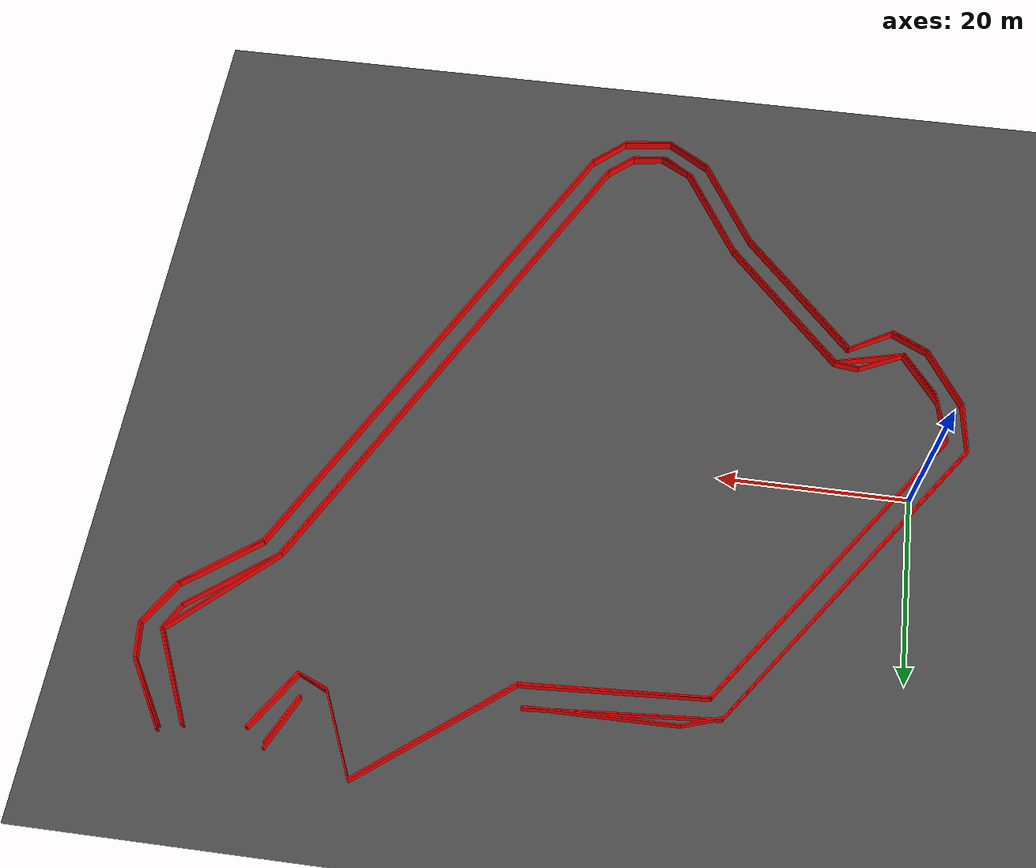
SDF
<sdf version="1.6">
 <world name="track_world">
  <model name="ground_plane">
   <static>true</static>
   <link name="link">
    <collision name="collision">
     <geometry><plane><normal>0 0 1</normal><size>1000 1000</size></plane></geometry>
    </collision>
    <visual name="visual">
     <geometry><plane><normal>0 0 1</normal><size>1000 1000</size></plane></geometry>
     <material><ambient>0.3 0.3 0.3 1</ambient><diffuse>0.3 0.3 0.3 1</diffuse></material>
    </visual>
   </link>
  </model>
  <model name="wall_11">
   <static>true</static>
   <pose>59.40029860208427 31.67979608975206 0.5 0 0 -2.0113266674114096</pose>
   <link name="link">
    <visual name="visual">
     <geometry><box><size>5.968211119054026 0.15 1.0</size></box></geometry>
     <material><ambient>1 0 0 1</ambient><diffuse>1 0 0 1</diffuse></material>
    </visual>
    <collision name="collision">
     <geometry><box><size>5.968211119054026 0.15 1.0</size></box></geometry>
    </collision>
   </link>
  </model>
  <model name="wall_15">
   <static>true</static>
   <pose>27.04845860208427 26.589876089752067 0.5 0 0 -3.070285188804503</pose>
   <link name="link">
    <visual name="visual">
     <geometry><box><size>19.483754067509675 0.15 1.0</size></box></geometry>
     <material><ambient>1 0 0 1</ambient><diffuse>1 0 0 1</diffuse></material>
    </visual>
    <collision name="collision">
     <geometry><box><size>19.483754067509675 0.15 1.0</size></box></geometry>
    </collision>
   </link>
  </model>
  <model name="wall_16">
   <static>true</static>
   <pose>5.724778602084275 9.893396089752066 0.5 0 0 -2.198301921255311</pose>
   <link name="link">
    <visual name="visual">
     <geometry><box><size>39.536769761506825 0.15 1.0</size></box></geometry>
     <material><ambient>1 0 0 1</ambient><diffuse>1 0 0 1</diffuse></material>
    </visual>
    <collision name="collision">
     <geometry><box><size>39.536769761506825 0.15 1.0</size></box></geometry>
    </collision>
   </link>
  </model>
  <model name="wall_17">
   <static>true</static>
   <pose>-5.611861397915725 -8.885323910247937 0.5 0 0 -1.473878699000534</pose>
   <link name="link">
    <visual name="visual">
     <geometry><box><size>5.578820502149181 0.15 1.0</size></box></geometry>
     <material><ambient>1 0 0 1</ambient><diffuse>1 0 0 1</diffuse></material>
    </visual>
    <collision name="collision">
     <geometry><box><size>5.578820502149181 0.15 1.0</size></box></geometry>
    </collision>
   </link>
  </model>
  <model name="wall_18">
   <static>true</static>
   <pose>-3.4139413979157247 -14.785003910247937 0.5 0 0 -1.0177648826442556</pose>
   <link name="link">
    <visual name="visual">
     <geometry><box><size>7.340997667783308 0.15 1.0</size></box></geometry>
     <material><ambient>1 0 0 1</ambient><diffuse>1 0 0 1</diffuse></material>
    </visual>
    <collision name="collision">
     <geometry><box><size>7.340997667783308 0.15 1.0</size></box></geometry>
    </collision>
   </link>
  </model>
  <model name="wall_19">
   <static>true</static>
   <pose>0.44205860208427694 -18.872363910247934 0.5 0 0 -0.46364760900080537</pose>
   <link name="link">
    <visual name="visual">
     <geometry><box><size>4.3111390606195945 0.15 1.0</size></box></geometry>
     <material><ambient>1 0 0 1</ambient><diffuse>1 0 0 1</diffuse></material>
    </visual>
    <collision name="collision">
     <geometry><box><size>4.3111390606195945 0.15 1.0</size></box></geometry>
    </collision>
   </link>
  </model>
  <model name="wall_20">
   <static>true</static>
   <pose>4.683658602084275 -18.486763910247934 0.5 0 0 0.5280744484263598</pose>
   <link name="link">
    <visual name="visual">
     <geometry><box><size>5.3569264023318395 0.15 1.0</size></box></geometry>
     <material><ambient>1 0 0 1</ambient><diffuse>1 0 0 1</diffuse></material>
    </visual>
    <collision name="collision">
     <geometry><box><size>5.3569264023318395 0.15 1.0</size></box></geometry>
    </collision>
   </link>
  </model>
  <model name="wall_21">
   <static>true</static>
   <pose>12.896938602084273 -23.538123910247933 0.5 0 0 -0.8261279770695137</pose>
   <link name="link">
    <visual name="visual">
     <geometry><box><size>17.410170938161407 0.15 1.0</size></box></geometry>
     <material><ambient>1 0 0 1</ambient><diffuse>1 0 0 1</diffuse></material>
    </visual>
    <collision name="collision">
     <geometry><box><size>17.410170938161407 0.15 1.0</size></box></geometry>
    </collision>
   </link>
  </model>
  <model name="wall_22">
   <static>true</static>
   <pose>21.650058602084272 -34.75908391024793 0.5 0 0 -1.0362799456764245</pose>
   <link name="link">
    <visual name="visual">
     <geometry><box><size>11.202592527375078 0.15 1.0</size></box></geometry>
     <material><ambient>1 0 0 1</ambient><diffuse>1 0 0 1</diffuse></material>
    </visual>
    <collision name="collision">
     <geometry><box><size>11.202592527375078 0.15 1.0</size></box></geometry>
    </collision>
   </link>
  </model>
  <model name="wall_23">
   <static>true</static>
   <pose>26.817098602084272 -41.005803910247934 0.5 0 0 -0.5525843502907148</pose>
   <link name="link">
    <visual name="visual">
     <geometry><box><size>5.436276269065071 0.15 1.0</size></box></geometry>
     <material><ambient>1 0 0 1</ambient><diffuse>1 0 0 1</diffuse></material>
    </visual>
    <collision name="collision">
     <geometry><box><size>5.436276269065071 0.15 1.0</size></box></geometry>
    </collision>
   </link>
  </model>
  <model name="wall_24">
   <static>true</static>
   <pose>31.675658602084276 -42.124043910247934 0.5 0 0 0.12062366858010372</pose>
   <link name="link">
    <visual name="visual">
     <geometry><box><size>5.127175172353689 0.15 1.0</size></box></geometry>
     <material><ambient>1 0 0 1</ambient><diffuse>1 0 0 1</diffuse></material>
    </visual>
    <collision name="collision">
     <geometry><box><size>5.127175172353689 0.15 1.0</size></box></geometry>
    </collision>
   </link>
  </model>
  <model name="wall_25">
   <static>true</static>
   <pose>36.03293860208428 -40.234603910247934 0.5 0 0 0.7173217051394482</pose>
   <link name="link">
    <visual name="visual">
     <geometry><box><size>4.809963951632066 0.15 1.0</size></box></geometry>
     <material><ambient>1 0 0 1</ambient><diffuse>1 0 0 1</diffuse></material>
    </visual>
    <collision name="collision">
     <geometry><box><size>4.809963951632066 0.15 1.0</size></box></geometry>
    </collision>
   </link>
  </model>
  <model name="wall_26">
   <static>true</static>
   <pose>51.611178602084266 -12.664203910247934 0.5 0 0 1.0836926099479667</pose>
   <link name="link">
    <visual name="visual">
     <geometry><box><size>58.8201171355515 0.15 1.0</size></box></geometry>
     <material><ambient>1 0 0 1</ambient><diffuse>1 0 0 1</diffuse></material>
    </visual>
    <collision name="collision"><geometry><box><size>58.8201171355515 0.15 1.0</size></box></geometry></collision>
   </link>
  </model>
  <model name="wall_27">
   <static>true</static>
   <pose>69.11741860208427 16.140116089752063 0.5 0 0 0.6451485537608409</pose>
   <link name="link">
    <visual name="visual">
     <geometry><box><size>9.362380705098476 0.15 1.0</size></box></geometry>
     <material><ambient>1 0 0 1</ambient><diffuse>1 0 0 1</diffuse></material>
    </visual>
    <collision name="collision">
     <geometry><box><size>9.362380705098476 0.15 1.0</size></box></geometry>
    </collision>
   </link>
  </model>
  <model name="wall_28">
   <static>true</static>
   <pose>74.24589860208428 21.26859608975206 0.5 0 0 1.030376826524313</pose>
   <link name="link">
    <visual name="visual">
     <geometry><box><size>5.3961961215656356 0.15 1.0</size></box></geometry>
     <material><ambient>1 0 0 1</ambient><diffuse>1 0 0 1</diffuse></material>
    </visual>
    <collision name="collision">
     <geometry><box><size>5.3961961215656356 0.15 1.0</size></box></geometry>
    </collision>
   </link>
  </model>
  <model name="wall_29">
   <static>true</static>
   <pose>75.40269860208427 25.39451608975206 0.5 0 0 1.6977691164089805</pose>
   <link name="link">
    <visual name="visual">
     <geometry><box><size>3.6540559557839303 0.15 1.0</size></box></geometry>
     <material><ambient>1 0 0 1</ambient><diffuse>1 0 0 1</diffuse></material>
    </visual>
    <collision name="collision">
     <geometry><box><size>3.6540559557839303 0.15 1.0</size></box></geometry>
    </collision>
   </link>
  </model>
  <model name="wall_30">
   <static>true</static>
   <pose>73.16621860208427 30.56155608975206 0.5 0 0 2.1095237813029404</pose>
   <link name="link">
    <visual name="visual">
     <geometry><box><size>7.816559983215114 0.15 1.0</size></box></geometry>
     <material><ambient>1 0 0 1</ambient><diffuse>1 0 0 1</diffuse></material>
    </visual>
    <collision name="collision">
     <geometry><box><size>7.816559983215114 0.15 1.0</size></box></geometry>
    </collision>
   </link>
  </model>
  <model name="wall_41">
   <static>true</static>
   <pose>73.05053860208427 30.36875608975206 0.5 0 0 -1.0143923976059468</pose>
   <link name="link">
    <visual name="visual">
     <geometry><box><size>7.447172972343268 0.15 1.0</size></box></geometry>
     <material><ambient>1 0 0 1</ambient><diffuse>1 0 0 1</diffuse></material>
    </visual>
    <collision name="collision">
     <geometry><box><size>7.447172972343268 0.15 1.0</size></box></geometry>
    </collision>
   </link>
  </model>
  <model name="wall_42">
   <static>true</static>
   <pose>75.24845860208427 25.355956089752063 0.5 0 0 -1.4464413322481375</pose>
   <link name="link">
    <visual name="visual">
     <geometry><box><size>3.7305679052926966 0.15 1.0</size></box></geometry>
     <material><ambient>1 0 0 1</ambient><diffuse>1 0 0 1</diffuse></material>
    </visual>
    <collision name="collision">
     <geometry><box><size>3.7305679052926966 0.15 1.0</size></box></geometry>
    </collision>
   </link>
  </model>
  <model name="wall_43">
   <static>true</static>
   <pose>74.09165860208427 21.268596089752066 0.5 0 0 -2.12629006206044</pose>
   <link name="link">
    <visual name="visual">
     <geometry><box><size>5.264534538209432 0.15 1.0</size></box></geometry>
     <material><ambient>1 0 0 1</ambient><diffuse>1 0 0 1</diffuse></material>
    </visual>
    <collision name="collision">
     <geometry><box><size>5.264534538209432 0.15 1.0</size></box></geometry>
    </collision>
   </link>
  </model>
  <model name="wall_44">
   <static>true</static>
   <pose>69.00173860208427 16.255796089752067 0.5 0 0 -2.4980915447965084</pose>
   <link name="link">
    <visual name="visual">
     <geometry><box><size>9.254399999999986 0.15 1.0</size></box></geometry>
     <material><ambient>1 0 0 1</ambient><diffuse>1 0 0 1</diffuse></material>
    </visual>
    <collision name="collision">
     <geometry><box><size>9.254399999999986 0.15 1.0</size></box></geometry>
    </collision>
   </link>
  </model>
  <model name="wall_45">
   <static>true</static>
   <pose>51.53405860208427 -12.509963910247933 0.5 0 0 -2.057900043641827</pose>
   <link name="link">
    <visual name="visual">
     <geometry><box><size>58.82011713555151 0.15 1.0</size></box></geometry>
     <material><ambient>1 0 0 1</ambient><diffuse>1 0 0 1</diffuse></material>
    </visual>
    <collision name="collision">
     <geometry><box><size>58.82011713555151 0.15 1.0</size></box></geometry>
    </collision>
   </link>
  </model>
  <model name="wall_46">
   <static>true</static>
   <pose>36.071498602084276 -40.041803910247936 0.5 0 0 -2.403777593469327</pose>
   <link name="link">
    <visual name="visual">
     <geometry><box><size>4.585884887172806 0.15 1.0</size></box></geometry>
     <material><ambient>1 0 0 1</ambient><diffuse>1 0 0 1</diffuse></material>
    </visual>
    <collision name="collision">
     <geometry><box><size>4.585884887172806 0.15 1.0</size></box></geometry>
    </collision>
   </link>
  </model>
  <model name="wall_47">
   <static>true</static>
   <pose>31.71421860208428 -41.931243910247936 0.5 0 0 -3.0118901164338814</pose>
   <link name="link">
    <visual name="visual">
     <geometry><box><size>5.366355176914776 0.15 1.0</size></box></geometry>
     <material><ambient>1 0 0 1</ambient><diffuse>1 0 0 1</diffuse></material>
    </visual>
    <collision name="collision">
     <geometry><box><size>5.366355176914776 0.15 1.0</size></box></geometry>
    </collision>
   </link>
  </model>
  <model name="wall_48">
   <static>true</static>
   <pose>26.81709860208428 -40.85156391024793 0.5 0 0 2.573748609326352</pose>
   <link name="link">
    <visual name="visual">
     <geometry><box><size>5.305609389617751 0.15 1.0</size></box></geometry>
     <material><ambient>1 0 0 1</ambient><diffuse>1 0 0 1</diffuse></material>
    </visual>
    <collision name="collision">
     <geometry><box><size>5.305609389617751 0.15 1.0</size></box></geometry>
    </collision>
   </link>
  </model>
  <model name="wall_49">
   <static>true</static>
   <pose>21.727178602084276 -34.604843910247936 0.5 0 0 2.1053127079133693</pose>
   <link name="link">
    <visual name="visual">
     <geometry><box><size>11.202592527375078 0.15 1.0</size></box></geometry>
     <material><ambient>1 0 0 1</ambient><diffuse>1 0 0 1</diffuse></material>
    </visual>
    <collision name="collision">
     <geometry><box><size>11.202592527375078 0.15 1.0</size></box></geometry>
    </collision>
   </link>
  </model>
  <model name="wall_50">
   <static>true</static>
   <pose>13.012618602084274 -23.422443910247935 0.5 0 0 2.3152079928786398</pose>
   <link name="link">
    <visual name="visual">
     <geometry><box><size>17.301197809909002 0.15 1.0</size></box></geometry>
     <material><ambient>1 0 0 1</ambient><diffuse>1 0 0 1</diffuse></material>
    </visual>
    <collision name="collision">
     <geometry><box><size>17.301197809909002 0.15 1.0</size></box></geometry>
    </collision>
   </link>
  </model>
  <model name="wall_51">
   <static>true</static>
   <pose>4.799338602084276 -18.371083910247936 0.5 0 0 -2.633103329510102</pose>
   <link name="link">
    <visual name="visual">
     <geometry><box><size>5.385715383196552 0.15 1.0</size></box></geometry>
     <material><ambient>1 0 0 1</ambient><diffuse>1 0 0 1</diffuse></material>
    </visual>
    <collision name="collision">
     <geometry><box><size>5.385715383196552 0.15 1.0</size></box></geometry>
    </collision>
   </link>
  </model>
  <model name="wall_52">
   <static>true</static>
   <pose>0.5191786020842777 -18.718123910247936 0.5 0 0 2.6779450445889865</pose>
   <link name="link">
    <visual name="visual">
     <geometry><box><size>4.311139060619598 0.15 1.0</size></box></geometry>
     <material><ambient>1 0 0 1</ambient><diffuse>1 0 0 1</diffuse></material>
    </visual>
    <collision name="collision">
     <geometry><box><size>4.311139060619598 0.15 1.0</size></box></geometry>
    </collision>
   </link>
  </model>
  <model name="wall_53">
   <static>true</static>
   <pose>-3.2982613979157236 -14.707883910247936 0.5 0 0 2.1259749029155017</pose>
   <link name="link">
    <visual name="visual">
     <geometry><box><size>7.169257046919154 0.15 1.0</size></box></geometry>
     <material><ambient>1 0 0 1</ambient><diffuse>1 0 0 1</diffuse></material>
    </visual>
    <collision name="collision">
     <geometry><box><size>7.169257046919154 0.15 1.0</size></box></geometry>
    </collision>
   </link>
  </model>
  <model name="wall_54">
   <static>true</static>
   <pose>-5.4961813979157235 -9.001003910247938 0.5 0 0 1.686222987161821</pose>
   <link name="link">
    <visual name="visual">
     <geometry><box><size>5.356926402331846 0.15 1.0</size></box></geometry>
     <material><ambient>1 0 0 1</ambient><diffuse>1 0 0 1</diffuse></material>
    </visual>
    <collision name="collision">
     <geometry><box><size>5.356926402331846 0.15 1.0</size></box></geometry>
    </collision>
   </link>
  </model>
  <model name="wall_55">
   <static>true</static>
   <pose>5.724778602084275 9.66203608975206 0.5 0 0 0.9464559545421241</pose>
   <link name="link">
    <visual name="visual">
     <geometry><box><size>39.44640883394076 0.15 1.0</size></box></geometry>
     <material><ambient>1 0 0 1</ambient><diffuse>1 0 0 1</diffuse></material>
    </visual>
    <collision name="collision">
     <geometry><box><size>39.44640883394076 0.15 1.0</size></box></geometry>
    </collision>
   </link>
  </model>
  <model name="wall_56">
   <static>true</static>
   <pose>19.25933860208427 26.31995608975206 0.5 0 0 0.315970271952982</pose>
   <link name="link">
    <visual name="visual">
     <geometry><box><size>4.21910544300566 0.15 1.0</size></box></geometry>
     <material><ambient>1 0 0 1</ambient><diffuse>1 0 0 1</diffuse></material>
    </visual>
    <collision name="collision"><geometry><box><size>4.21910544300566 0.15 1.0</size></box></geometry></collision>
   </link>
  </model>
  <model name="wall_57">
   <static>true</static>
   <pose>29.015018602084268 27.052596089752065 0.5 0 0 0.009949920392805265</pose>
   <link name="link">
    <visual name="visual">
     <geometry><box><size>15.501887344191351 0.15 1.0</size></box></geometry>
     <material><ambient>1 0 0 1</ambient><diffuse>1 0 0 1</diffuse></material>
    </visual>
    <collision name="collision">
     <geometry><box><size>15.501887344191351 0.15 1.0</size></box></geometry>
    </collision>
   </link>
  </model>
  <model name="wall_61">
   <static>true</static>
   <pose>59.438858602084274 31.332756089752067 0.5 0 0 1.1133214788988721</pose>
   <link name="link">
    <visual name="visual">
     <geometry><box><size>5.58734266942703 0.15 1.0</size></box></geometry>
     <material><ambient>1 0 0 1</ambient><diffuse>1 0 0 1</diffuse></material>
    </visual>
    <collision name="collision"><geometry><box><size>5.58734266942703 0.15 1.0</size></box></geometry></collision>
   </link>
  </model>
  <model name="wall_84">
   <static>true</static>
   <pose>60.67277860208427 29.636116089752058 0.5 0 0 -2.1467149264132495</pose>
   <link name="link">
    <visual name="visual">
     <geometry><box><size>7.080355238093628 0.15 1.0</size></box></geometry>
     <material><ambient>1 0 0 1</ambient><diffuse>1 0 0 1</diffuse></material>
    </visual>
    <collision name="collision">
     <geometry><box><size>7.080355238093628 0.15 1.0</size></box></geometry>
    </collision>
   </link>
  </model>
  <model name="wall_85">
   <static>true</static>
   <pose>57.31805860208427 27.322516089752064 0.5 0 0 2.7109001422032843</pose>
   <link name="link">
    <visual name="visual">
     <geometry><box><size>3.1402142785485276 0.15 1.0</size></box></geometry>
     <material><ambient>1 0 0 1</ambient><diffuse>1 0 0 1</diffuse></material>
    </visual>
    <collision name="collision">
     <geometry><box><size>3.1402142785485276 0.15 1.0</size></box></geometry>
    </collision>
   </link>
  </model>
  <model name="wall_87">
   <static>true</static>
   <pose>44.74749860208427 30.71579608975206 0.5 0 0 -2.480549484739107</pose>
   <link name="link">
    <visual name="visual">
     <geometry><box><size>18.465369044565556 0.15 1.0</size></box></geometry>
     <material><ambient>1 0 0 1</ambient><diffuse>1 0 0 1</diffuse></material>
    </visual>
    <collision name="collision">
     <geometry><box><size>18.465369044565556 0.15 1.0</size></box></geometry>
    </collision>
   </link>
  </model>
  <model name="wall_88">
   <static>true</static>
   <pose>28.051018602084273 24.50763608975206 0.5 0 0 -3.0842784444837528</pose>
   <link name="link">
    <visual name="visual">
     <geometry><box><size>18.848228975179595 0.15 1.0</size></box></geometry>
     <material><ambient>1 0 0 1</ambient><diffuse>1 0 0 1</diffuse></material>
    </visual>
    <collision name="collision">
     <geometry><box><size>18.848228975179595 0.15 1.0</size></box></geometry>
    </collision>
   </link>
  </model>
  <model name="wall_89">
   <static>true</static>
   <pose>7.459978602084277 8.46667608975206 0.5 0 0 -2.1957362099011433</pose>
   <link name="link">
    <visual name="visual">
     <geometry><box><size>38.22725682098572 0.15 1.0</size></box></geometry>
     <material><ambient>1 0 0 1</ambient><diffuse>1 0 0 1</diffuse></material>
    </visual>
    <collision name="collision">
     <geometry><box><size>38.22725682098572 0.15 1.0</size></box></geometry>
    </collision>
   </link>
  </model>
  <model name="wall_90">
   <static>true</static>
   <pose>-3.066901397915725 -9.810763910247935 0.5 0 0 -1.338931665945508</pose>
   <link name="link">
    <visual name="visual">
     <geometry><box><size>5.705316542594281 0.15 1.0</size></box></geometry>
     <material><ambient>1 0 0 1</ambient><diffuse>1 0 0 1</diffuse></material>
    </visual>
    <collision name="collision">
     <geometry><box><size>5.705316542594281 0.15 1.0</size></box></geometry>
    </collision>
   </link>
  </model>
  <model name="wall_91">
   <static>true</static>
   <pose>-0.6761813979157232 -14.862123910247934 0.5 0 0 -0.9192091408720385</pose>
   <link name="link">
    <visual name="visual">
     <geometry><box><size>5.722491080499824 0.15 1.0</size></box></geometry>
     <material><ambient>1 0 0 1</ambient><diffuse>1 0 0 1</diffuse></material>
    </visual>
    <collision name="collision">
     <geometry><box><size>5.722491080499824 0.15 1.0</size></box></geometry>
    </collision>
   </link>
  </model>
  <model name="wall_92">
   <static>true</static>
   <pose>4.760778602084276 -16.211723910247937 0.5 0 0 0.24497866312686392</pose>
   <link name="link">
    <visual name="visual">
     <geometry><box><size>7.631373740343208 0.15 1.0</size></box></geometry>
     <material><ambient>1 0 0 1</ambient><diffuse>1 0 0 1</diffuse></material>
    </visual>
    <collision name="collision">
     <geometry><box><size>7.631373740343208 0.15 1.0</size></box></geometry>
    </collision>
   </link>
  </model>
  <model name="wall_93">
   <static>true</static>
   <pose>14.477898602084274 -21.802923910247937 0.5 0 0 -0.8253768505207382</pose>
   <link name="link">
    <visual name="visual">
     <geometry><box><size>17.737097036347297 0.15 1.0</size></box></geometry>
     <material><ambient>1 0 0 1</ambient><diffuse>1 0 0 1</diffuse></material>
    </visual>
    <collision name="collision">
     <geometry><box><size>17.737097036347297 0.15 1.0</size></box></geometry>
    </collision>
   </link>
  </model>
  <model name="wall_94">
   <static>true</static>
   <pose>23.346698602084274 -33.13956391024794 0.5 0 0 -1.0362799456764247</pose>
   <link name="link">
    <visual name="visual">
     <geometry><box><size>11.20259252737508 0.15 1.0</size></box></geometry>
     <material><ambient>1 0 0 1</ambient><diffuse>1 0 0 1</diffuse></material>
    </visual>
    <collision name="collision">
     <geometry><box><size>11.20259252737508 0.15 1.0</size></box></geometry>
    </collision>
   </link>
  </model>
  <model name="wall_95">
   <static>true</static>
   <pose>27.819658602084274 -39.03924391024793 0.5 0 0 -0.5880026035475671</pose>
   <link name="link">
    <visual name="visual">
     <geometry><box><size>3.892841601092962 0.15 1.0</size></box></geometry>
     <material><ambient>1 0 0 1</ambient><diffuse>1 0 0 1</diffuse></material>
    </visual>
    <collision name="collision">
     <geometry><box><size>3.892841601092962 0.15 1.0</size></box></geometry>
    </collision>
   </link>
  </model>
  <model name="wall_96">
   <static>true</static>
   <pose>31.290058602084272 -39.92612391024794 0.5 0 0 0.10379234045704401</pose>
   <link name="link">
    <visual name="visual">
     <geometry><box><size>3.7217891473859654 0.15 1.0</size></box></geometry>
     <material><ambient>1 0 0 1</ambient><diffuse>1 0 0 1</diffuse></material>
    </visual>
    <collision name="collision">
     <geometry><box><size>3.7217891473859654 0.15 1.0</size></box></geometry>
    </collision>
   </link>
  </model>
  <model name="wall_97">
   <static>true</static>
   <pose>34.52909860208427 -38.53796391024793 0.5 0 0 0.7109093731835673</pose>
   <link name="link">
    <visual name="visual">
     <geometry><box><size>3.663808791517374 0.15 1.0</size></box></geometry>
     <material><ambient>1 0 0 1</ambient><diffuse>1 0 0 1</diffuse></material>
    </visual>
    <collision name="collision">
     <geometry><box><size>3.663808791517374 0.15 1.0</size></box></geometry>
    </collision>
   </link>
  </model>
  <model name="wall_98">
   <static>true</static>
   <pose>49.68317860208427 -11.353163910247936 0.5 0 0 1.0836926099479662</pose>
   <link name="link">
    <visual name="visual">
     <geometry><box><size>58.8201171355515 0.15 1.0</size></box></geometry>
     <material><ambient>1 0 0 1</ambient><diffuse>1 0 0 1</diffuse></material>
    </visual>
    <collision name="collision"><geometry><box><size>58.8201171355515 0.15 1.0</size></box></geometry></collision>
   </link>
  </model>
  <model name="wall_99">
   <static>true</static>
   <pose>67.65213860208426 17.91387608975206 0.5 0 0 0.6623122037024427</pose>
   <link name="link">
    <visual name="visual">
     <geometry><box><size>10.65986998074554 0.15 1.0</size></box></geometry>
     <material><ambient>1 0 0 1</ambient><diffuse>1 0 0 1</diffuse></material>
    </visual>
    <collision name="collision">
     <geometry><box><size>10.65986998074554 0.15 1.0</size></box></geometry>
    </collision>
   </link>
  </model>
  <model name="wall_100">
   <static>true</static>
   <pose>72.58781860208427 22.54107608975206 0.5 0 0 1.073453610448073</pose>
   <link name="link">
    <visual name="visual">
     <geometry><box><size>3.071274347628366 0.15 1.0</size></box></geometry>
     <material><ambient>1 0 0 1</ambient><diffuse>1 0 0 1</diffuse></material>
    </visual>
    <collision name="collision">
     <geometry><box><size>3.071274347628366 0.15 1.0</size></box></geometry>
    </collision>
   </link>
  </model>
  <model name="wall_101">
   <static>true</static>
   <pose>71.12253860208428 28.517876089752065 0.5 0 0 2.014244663214634</pose>
   <link name="link">
    <visual name="visual">
     <geometry><box><size>10.245356444048202 0.15 1.0</size></box></geometry>
     <material><ambient>1 0 0 1</ambient><diffuse>1 0 0 1</diffuse></material>
    </visual>
    <collision name="collision">
     <geometry><box><size>10.245356444048202 0.15 1.0</size></box></geometry>
    </collision>
   </link>
  </model>
  <model name="wall_112">
   <static>true</static>
   <pose>70.96829860208427 28.517876089752058 0.5 0 0 -1.1337205353380564</pose>
   <link name="link">
    <visual name="visual">
     <geometry><box><size>10.38488882729133 0.15 1.0</size></box></geometry>
     <material><ambient>1 0 0 1</ambient><diffuse>1 0 0 1</diffuse></material>
    </visual>
    <collision name="collision">
     <geometry><box><size>10.38488882729133 0.15 1.0</size></box></geometry>
    </collision>
   </link>
  </model>
  <model name="wall_113">
   <static>true</static>
   <pose>68.19197860208428 19.18635608975206 0.5 0 0 -2.3923233407051216</pose>
   <link name="link">
    <visual name="visual">
     <geometry><box><size>13.587353446142483 0.15 1.0</size></box></geometry>
     <material><ambient>1 0 0 1</ambient><diffuse>1 0 0 1</diffuse></material>
    </visual>
    <collision name="collision">
     <geometry><box><size>13.587353446142483 0.15 1.0</size></box></geometry>
    </collision>
   </link>
  </model>
  <model name="wall_114">
   <static>true</static>
   <pose>49.528938602084274 -11.314603910247936 0.5 0 0 -2.057421623535631</pose>
   <link name="link">
    <visual name="visual">
     <geometry><box><size>58.54347792803568 0.15 1.0</size></box></geometry>
     <material><ambient>1 0 0 1</ambient><diffuse>1 0 0 1</diffuse></material>
    </visual>
    <collision name="collision">
     <geometry><box><size>58.54347792803568 0.15 1.0</size></box></geometry>
    </collision>
   </link>
  </model>
  <model name="wall_115">
   <static>true</static>
   <pose>34.49053860208427 -38.38372391024794 0.5 0 0 -2.416726509974454</pose>
   <link name="link">
    <visual name="visual">
     <geometry><box><size>3.605720837558005 0.15 1.0</size></box></geometry>
     <material><ambient>1 0 0 1</ambient><diffuse>1 0 0 1</diffuse></material>
    </visual>
    <collision name="collision">
     <geometry><box><size>3.605720837558005 0.15 1.0</size></box></geometry>
    </collision>
   </link>
  </model>
  <model name="wall_116">
   <static>true</static>
   <pose>31.48285860208427 -39.81044391024793 0.5 0 0 -3.0029529164556337</pose>
   <link name="link">
    <visual name="visual">
     <geometry><box><size>3.3482871657012905 0.15 1.0</size></box></geometry>
     <material><ambient>1 0 0 1</ambient><diffuse>1 0 0 1</diffuse></material>
    </visual>
    <collision name="collision">
     <geometry><box><size>3.3482871657012905 0.15 1.0</size></box></geometry>
    </collision>
   </link>
  </model>
  <model name="wall_117">
   <static>true</static>
   <pose>28.243818602084275 -39.15492391024793 0.5 0 0 2.6303619413120023</pose>
   <link name="link">
    <visual name="visual">
     <geometry><box><size>3.6254603327025907 0.15 1.0</size></box></geometry>
     <material><ambient>1 0 0 1</ambient><diffuse>1 0 0 1</diffuse></material>
    </visual>
    <collision name="collision">
     <geometry><box><size>3.6254603327025907 0.15 1.0</size></box></geometry>
    </collision>
   </link>
  </model>
  <model name="wall_118">
   <static>true</static>
   <pose>23.616618602084273 -33.21668391024794 0.5 0 0 2.1134579757745753</pose>
   <link name="link">
    <visual name="visual">
     <geometry><box><size>11.797595685087707 0.15 1.0</size></box></geometry>
     <material><ambient>1 0 0 1</ambient><diffuse>1 0 0 1</diffuse></material>
    </visual>
    <collision name="collision">
     <geometry><box><size>11.797595685087707 0.15 1.0</size></box></geometry>
    </collision>
   </link>
  </model>
  <model name="wall_119">
   <static>true</static>
   <pose>14.555018602084271 -21.648683910247936 0.5 0 0 2.316215803069055</pose>
   <link name="link">
    <visual name="visual">
     <geometry><box><size>17.73709703634729 0.15 1.0</size></box></geometry>
     <material><ambient>1 0 0 1</ambient><diffuse>1 0 0 1</diffuse></material>
    </visual>
    <collision name="collision">
     <geometry><box><size>17.73709703634729 0.15 1.0</size></box></geometry>
    </collision>
   </link>
  </model>
  <model name="wall_120">
   <static>true</static>
   <pose>7.228618602084275 -14.977803910247935 0.5 0 0 3.0244839090229276</pose>
   <link name="link">
    <visual name="visual">
     <geometry><box><size>2.6401635246325155 0.15 1.0</size></box></geometry>
     <material><ambient>1 0 0 1</ambient><diffuse>1 0 0 1</diffuse></material>
    </visual>
    <collision name="collision">
     <geometry><box><size>2.6401635246325155 0.15 1.0</size></box></geometry>
    </collision>
   </link>
  </model>
  <model name="wall_121">
   <static>true</static>
   <pose>3.565418602084275 -15.941803910247934 0.5 0 0 -2.697809980840152</pose>
   <link name="link">
    <visual name="visual">
     <geometry><box><size>5.208883705056202 0.15 1.0</size></box></geometry>
     <material><ambient>1 0 0 1</ambient><diffuse>1 0 0 1</diffuse></material>
    </visual>
    <collision name="collision">
     <geometry><box><size>5.208883705056202 0.15 1.0</size></box></geometry>
    </collision>
   </link>
  </model>
  <model name="wall_122">
   <static>true</static>
   <pose>-0.7147413979157236 -14.399403910247933 0.5 0 0 2.1978669893839142</pose>
   <link name="link">
    <visual name="visual">
     <geometry><box><size>6.571511001162516 0.15 1.0</size></box></geometry>
     <material><ambient>1 0 0 1</ambient><diffuse>1 0 0 1</diffuse></material>
    </visual>
    <collision name="collision">
     <geometry><box><size>6.571511001162516 0.15 1.0</size></box></geometry>
    </collision>
   </link>
  </model>
  <model name="wall_123">
   <static>true</static>
   <pose>-3.1054613979157217 -9.386603910247935 0.5 0 0 1.765037322976301</pose>
   <link name="link">
    <visual name="visual">
     <geometry><box><size>4.7944828559501556 0.15 1.0</size></box></geometry>
     <material><ambient>1 0 0 1</ambient><diffuse>1 0 0 1</diffuse></material>
    </visual>
    <collision name="collision">
     <geometry><box><size>4.7944828559501556 0.15 1.0</size></box></geometry>
    </collision>
   </link>
  </model>
  <model name="wall_124">
   <static>true</static>
   <pose>7.614218602084275 8.428116089752063 0.5 0 0 0.9446742280324577</pose>
   <link name="link">
    <visual name="visual">
     <geometry><box><size>38.16473930284864 0.15 1.0</size></box></geometry>
     <material><ambient>1 0 0 1</ambient><diffuse>1 0 0 1</diffuse></material>
    </visual>
    <collision name="collision">
     <geometry><box><size>38.16473930284864 0.15 1.0</size></box></geometry>
    </collision>
   </link>
  </model>
  <model name="wall_125">
   <static>true</static>
   <pose>28.12813860208427 24.391956089752064 0.5 0 0 0.05366742466456605</pose>
   <link name="link">
    <visual name="visual">
     <geometry><box><size>18.68994886550522 0.15 1.0</size></box></geometry>
     <material><ambient>1 0 0 1</ambient><diffuse>1 0 0 1</diffuse></material>
    </visual>
    <collision name="collision">
     <geometry><box><size>18.68994886550522 0.15 1.0</size></box></geometry>
    </collision>
   </link>
  </model>
  <model name="wall_126">
   <static>true</static>
   <pose>44.74749860208427 30.56155608975206 0.5 0 0 0.6610431688506861</pose>
   <link name="link">
    <visual name="visual">
     <geometry><box><size>18.465369044565556 0.15 1.0</size></box></geometry>
     <material><ambient>1 0 0 1</ambient><diffuse>1 0 0 1</diffuse></material>
    </visual>
    <collision name="collision">
     <geometry><box><size>18.465369044565556 0.15 1.0</size></box></geometry>
    </collision>
   </link>
  </model>
  <model name="wall_127">
   <static>true</static>
   <pose>53.924778602084274 32.02683608975206 0.5 0 0 -1.1483239344091805</pose>
   <link name="link">
    <visual name="visual">
     <geometry><box><size>9.216404668893388 0.15 1.0</size></box></geometry>
     <material><ambient>1 0 0 1</ambient><diffuse>1 0 0 1</diffuse></material>
    </visual>
    <collision name="collision">
     <geometry><box><size>9.216404668893388 0.15 1.0</size></box></geometry>
    </collision>
   </link>
  </model>
  <model name="wall_128">
   <static>true</static>
   <pose>57.356618602084275 27.206836089752066 0.5 0 0 -0.38050637711236407</pose>
   <link name="link">
    <visual name="visual">
     <geometry><box><size>3.3224312794097037 0.15 1.0</size></box></geometry>
     <material><ambient>1 0 0 1</ambient><diffuse>1 0 0 1</diffuse></material>
    </visual>
    <collision name="collision">
     <geometry><box><size>3.3224312794097037 0.15 1.0</size></box></geometry>
    </collision>
   </link>
  </model>
  <model name="wall_129">
   <static>true</static>
   <pose>60.82701860208427 29.59755608975206 0.5 0 0 1.000755863095186</pose>
   <link name="link">
    <visual name="visual">
     <geometry><box><size>7.1451586357196994 0.15 1.0</size></box></geometry>
     <material><ambient>1 0 0 1</ambient><diffuse>1 0 0 1</diffuse></material>
    </visual>
    <collision name="collision">
     <geometry><box><size>7.1451586357196994 0.15 1.0</size></box></geometry>
    </collision>
   </link>
  </model>
 </world>
</sdf>
